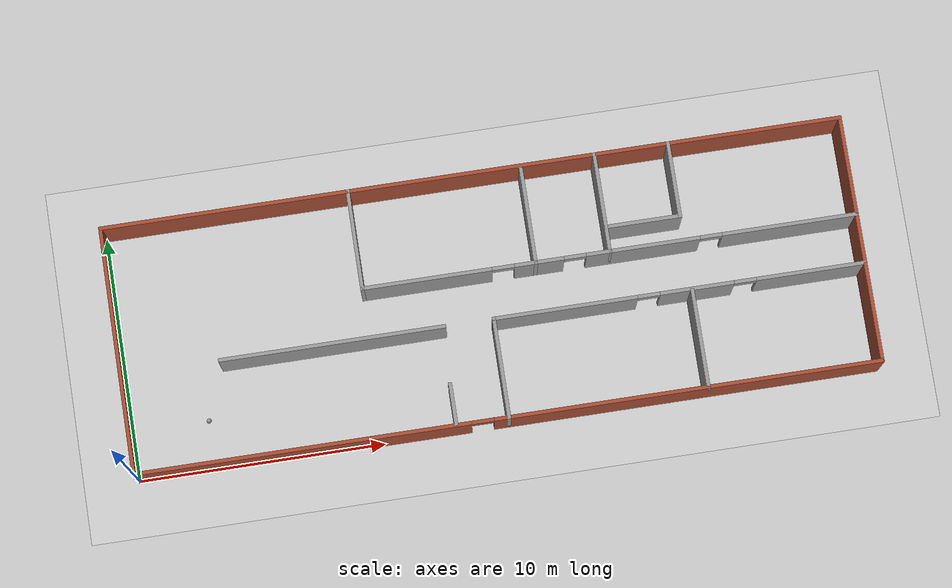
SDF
<sdf version="1.6">
 <world name="default">
  <plugin name="hello" filename="libhello.so"/>
  <light name="sun" type="directional">
   <pose>0 0 10 0 -0 0</pose>
   <diffuse>0.8 0.8 0.8 1</diffuse>
   <specular>0.2 0.2 0.2 1</specular>
   <attenuation>
    <range>1000</range>
    <constant>0.9</constant>
    <linear>0.01</linear>
    <quadratic>0.001</quadratic>
   </attenuation>
   <direction>-0.5 0.1 -0.9</direction>
  </light>
  <model name="ground_plane">
   <static>1</static>
   <link name="link">
    <collision name="collision">
     <geometry><plane><normal>0 0 1</normal><size>100 100</size></plane></geometry>
     <surface>
      <contact><collide_bitmask>65535</collide_bitmask></contact>
      <friction><ode><mu>100</mu><mu2>50</mu2></ode></friction>
     </surface>
    </collision>
    <visual name="visual">
     <cast_shadows>0</cast_shadows>
     <geometry><plane><normal>0 0 1</normal><size>100 100</size></plane></geometry>
     <material>
      <script><uri>file://media/materials/scripts/gazebo.material</uri><name>Gazebo/Grey</name></script>
     </material>
    </visual>
   </link>
  </model>
  <gravity>0 0 -9.8</gravity>
  <magnetic_field>6e-06 2.3e-05 -4.2e-05</magnetic_field>
  <atmosphere type="adiabatic"/>
  <physics name="default_physics" default="0" type="ode">
   <max_step_size>0.001</max_step_size>
   <real_time_factor>1</real_time_factor>
   <real_time_update_rate>1000</real_time_update_rate>
  </physics>
  <scene><ambient>0.4 0.4 0.4 1</ambient><background>0.7 0.7 0.7 1</background><shadows>1</shadows></scene>
  <spherical_coordinates>
   <surface_model>EARTH_WGS84</surface_model>
   <latitude_deg>0</latitude_deg>
   <longitude_deg>0</longitude_deg>
   <elevation>0</elevation>
   <heading_deg>0</heading_deg>
  </spherical_coordinates>
  <model name="building">
   <pose>15 5 0 0 -0 0</pose>
   <link name="Wall_0">
    <collision name="Wall_0_Collision">
     <geometry><box><size>10.15 0.15 2.5</size></box></geometry>
     <pose>0 0 1.25 0 -0 0</pose>
    </collision>
    <visual name="Wall_0_Visual">
     <pose>0 0 1.25 0 -0 0</pose>
     <geometry><box><size>10.15 0.15 2.5</size></box></geometry>
     <material>
      <script><uri>file://media/materials/scripts/gazebo.material</uri><name>Gazebo/Bricks</name></script>
      <ambient>1 1 1 1</ambient>
     </material>
     <meta><layer>0</layer></meta>
    </visual>
    <pose>-15 0 0 0 -0 1.5708</pose>
   </link>
   <link name="Wall_19">
    <pose>5 1 0 0 -0 3.14159</pose>
    <visual name="Wall_19_Visual_0">
     <pose>-7.3118 0 1.25 0 -0 0</pose>
     <geometry><box><size>5.52639 0.15 2.5</size></box></geometry>
     <material>
      <script><uri>file://media/materials/scripts/gazebo.material</uri><name>Gazebo/Grey</name></script>
      <ambient>1 1 1 1</ambient>
     </material>
     <meta><layer>0</layer></meta>
    </visual>
    <collision name="Wall_19_Collision_0">
     <geometry><box><size>5.52639 0.15 2.5</size></box></geometry>
     <pose>-7.3118 0 1.25 0 -0 0</pose>
    </collision>
    <visual name="Wall_19_Visual_1">
     <pose>-1.34507 0 1.25 0 -0 0</pose>
     <geometry><box><size>4.60708 0.15 2.5</size></box></geometry>
     <material>
      <script><uri>file://media/materials/scripts/gazebo.material</uri><name>Gazebo/Grey</name></script>
      <ambient>1 1 1 1</ambient>
     </material>
     <meta><layer>0</layer></meta>
    </visual>
    <collision name="Wall_19_Collision_1">
     <geometry><box><size>4.60708 0.15 2.5</size></box></geometry>
     <pose>-1.34507 0 1.25 0 -0 0</pose>
    </collision>
    <visual name="Wall_19_Visual_2">
     <pose>2.86259 0 1.25 0 -0 0</pose>
     <geometry><box><size>2.00823 0.15 2.5</size></box></geometry>
     <material>
      <script><uri>file://media/materials/scripts/gazebo.material</uri><name>Gazebo/Grey</name></script>
      <ambient>1 1 1 1</ambient>
     </material>
     <meta><layer>0</layer></meta>
    </visual>
    <collision name="Wall_19_Collision_2">
     <geometry><box><size>2.00823 0.15 2.5</size></box></geometry>
     <pose>2.86259 0 1.25 0 -0 0</pose>
    </collision>
    <visual name="Wall_19_Visual_3">
     <pose>7.42085 0 1.25 0 -0 0</pose>
     <geometry><box><size>5.3083 0.15 2.5</size></box></geometry>
     <material>
      <script><uri>file://media/materials/scripts/gazebo.material</uri><name>Gazebo/Grey</name></script>
      <ambient>1 1 1 1</ambient>
     </material>
     <meta><layer>0</layer></meta>
    </visual>
    <collision name="Wall_19_Collision_3">
     <geometry><box><size>5.3083 0.15 2.5</size></box></geometry>
     <pose>7.42085 0 1.25 0 -0 0</pose>
    </collision>
    <visual name="Wall_19_Visual_4">
     <pose>-4.09861 0 2.25 0 -0 0</pose>
     <geometry><box><size>0.9 0.15 0.5</size></box></geometry>
     <material>
      <script><uri>file://media/materials/scripts/gazebo.material</uri><name>Gazebo/Grey</name></script>
      <ambient>1 1 1 1</ambient>
     </material>
     <meta><layer>0</layer></meta>
    </visual>
    <collision name="Wall_19_Collision_4">
     <geometry><box><size>0.9 0.15 0.5</size></box></geometry>
     <pose>-4.09861 0 2.25 0 -0 0</pose>
    </collision>
    <visual name="Wall_19_Visual_5">
     <pose>1.40847 0 2.25 0 -0 0</pose>
     <geometry><box><size>0.9 0.15 0.5</size></box></geometry>
     <material>
      <script><uri>file://media/materials/scripts/gazebo.material</uri><name>Gazebo/Grey</name></script>
      <ambient>1 1 1 1</ambient>
     </material>
     <meta><layer>0</layer></meta>
    </visual>
    <collision name="Wall_19_Collision_5">
     <geometry><box><size>0.9 0.15 0.5</size></box></geometry>
     <pose>1.40847 0 2.25 0 -0 0</pose>
    </collision>
    <visual name="Wall_19_Visual_6">
     <pose>4.3167 0 2.25 0 -0 0</pose>
     <geometry><box><size>0.9 0.15 0.5</size></box></geometry>
     <material>
      <script><uri>file://media/materials/scripts/gazebo.material</uri><name>Gazebo/Grey</name></script>
      <ambient>1 1 1 1</ambient>
     </material>
     <meta><layer>0</layer></meta>
    </visual>
    <collision name="Wall_19_Collision_6">
     <geometry><box><size>0.9 0.15 0.5</size></box></geometry>
     <pose>4.3167 0 2.25 0 -0 0</pose>
    </collision>
   </link>
   <link name="Wall_2">
    <pose>0 -5 0 0 -0 0</pose>
    <visual name="Wall_2_Visual_0">
     <pose>-8.28713 0 1.25 0 -0 0</pose>
     <geometry><box><size>13.5757 0.15 2.5</size></box></geometry>
     <material>
      <script><uri>file://media/materials/scripts/gazebo.material</uri><name>Gazebo/Bricks</name></script>
      <ambient>1 1 1 1</ambient>
     </material>
     <meta><layer>0</layer></meta>
    </visual>
    <collision name="Wall_2_Collision_0">
     <geometry><box><size>13.5757 0.15 2.5</size></box></geometry>
     <pose>-8.28713 0 1.25 0 -0 0</pose>
    </collision>
    <visual name="Wall_2_Visual_1">
     <pose>7.23787 0 1.25 0 -0 0</pose>
     <geometry><box><size>15.6743 0.15 2.5</size></box></geometry>
     <material>
      <script><uri>file://media/materials/scripts/gazebo.material</uri><name>Gazebo/Bricks</name></script>
      <ambient>1 1 1 1</ambient>
     </material>
     <meta><layer>0</layer></meta>
    </visual>
    <collision name="Wall_2_Collision_1">
     <geometry><box><size>15.6743 0.15 2.5</size></box></geometry>
     <pose>7.23787 0 1.25 0 -0 0</pose>
    </collision>
    <visual name="Wall_2_Visual_2">
     <pose>-1.04926 0 2.25 0 -0 0</pose>
     <geometry><box><size>0.9 0.15 0.5</size></box></geometry>
     <material>
      <script><uri>file://media/materials/scripts/gazebo.material</uri><name>Gazebo/Bricks</name></script>
      <ambient>1 1 1 1</ambient>
     </material>
     <meta><layer>0</layer></meta>
    </visual>
    <collision name="Wall_2_Collision_2">
     <geometry><box><size>0.9 0.15 0.5</size></box></geometry>
     <pose>-1.04926 0 2.25 0 -0 0</pose>
    </collision>
   </link>
   <link name="Wall_20">
    <collision name="Wall_20_Collision">
     <geometry><box><size>4.15 0.15 2.5</size></box></geometry>
     <pose>0 0 1.25 0 -0 0</pose>
    </collision>
    <visual name="Wall_20_Visual">
     <pose>0 0 1.25 0 -0 0</pose>
     <geometry><box><size>4.15 0.15 2.5</size></box></geometry>
     <material>
      <script><uri>file://media/materials/scripts/gazebo.material</uri><name>Gazebo/Grey</name></script>
      <ambient>1 1 1 1</ambient>
     </material>
     <meta><layer>0</layer></meta>
    </visual>
    <pose>-5 3 0 0 -0 1.5708</pose>
   </link>
   <link name="Wall_22">
    <pose>7.5 -1 0 0 -0 3.14159</pose>
    <visual name="Wall_22_Visual_0">
     <pose>-5.33776 0 1.25 0 -0 0</pose>
     <geometry><box><size>4.47448 0.15 2.5</size></box></geometry>
     <material>
      <script><uri>file://media/materials/scripts/gazebo.material</uri><name>Gazebo/Grey</name></script>
      <ambient>1 1 1 1</ambient>
     </material>
     <meta><layer>0</layer></meta>
    </visual>
    <collision name="Wall_22_Collision_0">
     <geometry><box><size>4.47448 0.15 2.5</size></box></geometry>
     <pose>-5.33776 0 1.25 0 -0 0</pose>
    </collision>
    <visual name="Wall_22_Visual_1">
     <pose>-0.701386 0 1.25 0 -0 0</pose>
     <geometry><box><size>2.99827 0.15 2.5</size></box></geometry>
     <material>
      <script><uri>file://media/materials/scripts/gazebo.material</uri><name>Gazebo/Grey</name></script>
      <ambient>1 1 1 1</ambient>
     </material>
     <meta><layer>0</layer></meta>
    </visual>
    <collision name="Wall_22_Collision_1">
     <geometry><box><size>2.99827 0.15 2.5</size></box></geometry>
     <pose>-0.701386 0 1.25 0 -0 0</pose>
    </collision>
    <visual name="Wall_22_Visual_2">
     <pose>4.63637 0 1.25 0 -0 0</pose>
     <geometry><box><size>5.87725 0.15 2.5</size></box></geometry>
     <material>
      <script><uri>file://media/materials/scripts/gazebo.material</uri><name>Gazebo/Grey</name></script>
      <ambient>1 1 1 1</ambient>
     </material>
     <meta><layer>0</layer></meta>
    </visual>
    <collision name="Wall_22_Collision_2">
     <geometry><box><size>5.87725 0.15 2.5</size></box></geometry>
     <pose>4.63637 0 1.25 0 -0 0</pose>
    </collision>
    <visual name="Wall_22_Visual_3">
     <pose>-2.65052 0 2.25 0 -0 0</pose>
     <geometry><box><size>0.9 0.15 0.5</size></box></geometry>
     <material>
      <script><uri>file://media/materials/scripts/gazebo.material</uri><name>Gazebo/Grey</name></script>
      <ambient>1 1 1 1</ambient>
     </material>
     <meta><layer>0</layer></meta>
    </visual>
    <collision name="Wall_22_Collision_3">
     <geometry><box><size>0.9 0.15 0.5</size></box></geometry>
     <pose>-2.65052 0 2.25 0 -0 0</pose>
    </collision>
    <visual name="Wall_22_Visual_4">
     <pose>1.24775 0 2.25 0 -0 0</pose>
     <geometry><box><size>0.9 0.15 0.5</size></box></geometry>
     <material>
      <script><uri>file://media/materials/scripts/gazebo.material</uri><name>Gazebo/Grey</name></script>
      <ambient>1 1 1 1</ambient>
     </material>
     <meta><layer>0</layer></meta>
    </visual>
    <collision name="Wall_22_Collision_4">
     <geometry><box><size>0.9 0.15 0.5</size></box></geometry>
     <pose>1.24775 0 2.25 0 -0 0</pose>
    </collision>
   </link>
   <link name="Wall_23">
    <collision name="Wall_23_Collision">
     <geometry><box><size>4.15 0.15 2.5</size></box></geometry>
     <pose>0 0 1.25 0 -0 0</pose>
    </collision>
    <visual name="Wall_23_Visual">
     <pose>0 0 1.25 0 -0 0</pose>
     <geometry><box><size>4.15 0.15 2.5</size></box></geometry>
     <material>
      <script><uri>file://media/materials/scripts/gazebo.material</uri><name>Gazebo/Grey</name></script>
      <ambient>1 1 1 1</ambient>
     </material>
     <meta><layer>0</layer></meta>
    </visual>
    <pose>0 -3 0 0 0 -1.5708</pose>
   </link>
   <link name="Wall_25">
    <collision name="Wall_25_Collision">
     <geometry><box><size>9.15 0.15 2.5</size></box></geometry>
     <pose>0 0 1.25 0 -0 0</pose>
    </collision>
    <visual name="Wall_25_Visual">
     <pose>0 0 1.25 0 -0 0</pose>
     <geometry><box><size>9.15 0.15 2.5</size></box></geometry>
     <material>
      <script><uri>file://media/materials/scripts/gazebo.material</uri><name>Gazebo/Grey</name></script>
      <ambient>1 1 1 1</ambient>
     </material>
     <meta><layer>0</layer></meta>
    </visual>
    <pose>-6.5 -1 0 0 -0 3.14159</pose>
   </link>
   <link name="Wall_27">
    <collision name="Wall_27_Collision">
     <geometry><box><size>1.75 0.15 2.5</size></box></geometry>
     <pose>0 0 1.25 0 -0 0</pose>
    </collision>
    <visual name="Wall_27_Visual">
     <pose>0 0 1.25 0 -0 0</pose>
     <geometry><box><size>1.75 0.15 2.5</size></box></geometry>
     <material>
      <script><uri>file://media/materials/scripts/gazebo.material</uri><name>Gazebo/Grey</name></script>
      <ambient>1 1 1 1</ambient>
     </material>
     <meta><layer>0</layer></meta>
    </visual>
    <pose>-2.11244 -4.14773 0 0 0 -1.5708</pose>
   </link>
   <link name="Wall_29">
    <collision name="Wall_29_Collision">
     <geometry><box><size>4.15 0.15 2.5</size></box></geometry>
     <pose>0 0 1.25 0 -0 0</pose>
    </collision>
    <visual name="Wall_29_Visual">
     <pose>0 0 1.25 0 -0 0</pose>
     <geometry><box><size>4.15 0.15 2.5</size></box></geometry>
     <material>
      <script><uri>file://media/materials/scripts/gazebo.material</uri><name>Gazebo/Grey</name></script>
      <ambient>1 1 1 1</ambient>
     </material>
     <meta><layer>0</layer></meta>
    </visual>
    <pose>2 3 0 0 0 -1.5708</pose>
   </link>
   <link name="Wall_3">
    <collision name="Wall_3_Collision">
     <geometry><box><size>10.15 0.15 2.5</size></box></geometry>
     <pose>0 0 1.25 0 -0 0</pose>
    </collision>
    <visual name="Wall_3_Visual">
     <pose>0 0 1.25 0 -0 0</pose>
     <geometry><box><size>10.15 0.15 2.5</size></box></geometry>
     <material>
      <script><uri>file://media/materials/scripts/gazebo.material</uri><name>Gazebo/Bricks</name></script>
      <ambient>1 1 1 1</ambient>
     </material>
     <meta><layer>0</layer></meta>
    </visual>
    <pose>15 0 0 0 -0 1.5708</pose>
   </link>
   <link name="Wall_31">
    <collision name="Wall_31_Collision">
     <geometry><box><size>4.15 0.15 2.5</size></box></geometry>
     <pose>0 0 1.25 0 -0 0</pose>
    </collision>
    <visual name="Wall_31_Visual">
     <pose>0 0 1.25 0 -0 0</pose>
     <geometry><box><size>4.15 0.15 2.5</size></box></geometry>
     <material>
      <script><uri>file://media/materials/scripts/gazebo.material</uri><name>Gazebo/Grey</name></script>
      <ambient>1 1 1 1</ambient>
     </material>
     <meta><layer>0</layer></meta>
    </visual>
    <pose>5 3 0 0 0 -1.5708</pose>
   </link>
   <link name="Wall_33">
    <collision name="Wall_33_Collision">
     <geometry><box><size>3.15 0.15 2.5</size></box></geometry>
     <pose>0 0 1.25 0 -0 0</pose>
    </collision>
    <visual name="Wall_33_Visual">
     <pose>0 0 1.25 0 -0 0</pose>
     <geometry><box><size>3.15 0.15 2.5</size></box></geometry>
     <material>
      <script><uri>file://media/materials/scripts/gazebo.material</uri><name>Gazebo/Grey</name></script>
      <ambient>1 1 1 1</ambient>
     </material>
     <meta><layer>0</layer></meta>
    </visual>
    <pose>8 3.5 0 0 0 -1.5708</pose>
   </link>
   <link name="Wall_34">
    <collision name="Wall_34_Collision">
     <geometry><box><size>3.15 0.15 2.5</size></box></geometry>
     <pose>0 0 1.25 0 -0 0</pose>
    </collision>
    <visual name="Wall_34_Visual">
     <pose>0 0 1.25 0 -0 0</pose>
     <geometry><box><size>3.15 0.15 2.5</size></box></geometry>
     <material>
      <script><uri>file://media/materials/scripts/gazebo.material</uri><name>Gazebo/Grey</name></script>
      <ambient>1 1 1 1</ambient>
     </material>
     <meta><layer>0</layer></meta>
    </visual>
    <pose>6.5 2 0 0 -0 3.14159</pose>
   </link>
   <link name="Wall_36">
    <collision name="Wall_36_Collision">
     <geometry><box><size>4.15 0.15 2.5</size></box></geometry>
     <pose>0 0 1.25 0 -0 0</pose>
    </collision>
    <visual name="Wall_36_Visual">
     <pose>0 0 1.25 0 -0 0</pose>
     <geometry><box><size>4.15 0.15 2.5</size></box></geometry>
     <material>
      <script><uri>file://media/materials/scripts/gazebo.material</uri><name>Gazebo/Grey</name></script>
      <ambient>1 1 1 1</ambient>
     </material>
     <meta><layer>0</layer></meta>
    </visual>
    <pose>8 -3 0 0 0 -1.5708</pose>
   </link>
   <link name="Wall_5">
    <collision name="Wall_5_Collision">
     <geometry><box><size>30.15 0.15 2.5</size></box></geometry>
     <pose>0 0 1.25 0 -0 0</pose>
    </collision>
    <visual name="Wall_5_Visual">
     <pose>0 0 1.25 0 -0 0</pose>
     <geometry><box><size>30.15 0.15 2.5</size></box></geometry>
     <material>
      <script><uri>file://media/materials/scripts/gazebo.material</uri><name>Gazebo/Bricks</name></script>
      <ambient>1 1 1 1</ambient>
     </material>
     <meta><layer>0</layer></meta>
    </visual>
    <pose>0 5 0 0 -0 0</pose>
   </link>
   <static>1</static>
  </model>
  <model name="my_ball">
   <link name="link_0">
    <inertial>
     <mass>1</mass>
     <inertia><ixx>0.1</ixx><ixy>0</ixy><ixz>0</ixz><iyy>0.1</iyy><iyz>0</iyz><izz>0.1</izz></inertia>
    </inertial>
    <visual name="visual">
     <geometry><sphere><radius>0.1</radius></sphere></geometry>
     <material>
      <lighting>1</lighting>
      <script><uri>file://media/materials/scripts/gazebo.material</uri><name>Gazebo/Grey</name></script>
      <shader type="pixel"><normal_map>__default__</normal_map></shader>
      <ambient>1 1 1 1</ambient>
      <diffuse>1 1 1 1</diffuse>
      <specular>1 1 1 1</specular>
      <emissive>1 1 1 1</emissive>
     </material>
    </visual>
    <collision name="collision">
     <geometry><sphere><radius>0.1</radius></sphere></geometry>
     <surface>
      <friction>
       <ode><mu>1</mu><mu2>1</mu2><fdir1>0 0 0</fdir1><slip1>0</slip1><slip2>0</slip2></ode>
       <torsional>
        <coefficient>1</coefficient>
        <patch_radius>0</patch_radius>
        <surface_radius>0</surface_radius>
        <use_patch_radius>1</use_patch_radius>
        <ode><slip>0</slip></ode>
       </torsional>
      </friction>
      <bounce><restitution_coefficient>0</restitution_coefficient><threshold>1e+06</threshold></bounce>
      <contact>
       <collide_without_contact>0</collide_without_contact>
       <collide_without_contact_bitmask>1</collide_without_contact_bitmask>
       <collide_bitmask>1</collide_bitmask>
       <ode>
        <soft_cfm>0</soft_cfm>
        <soft_erp>0.2</soft_erp>
        <kp>1e+13</kp>
        <kd>1</kd>
        <max_vel>0.01</max_vel>
        <min_depth>0</min_depth>
       </ode>
       <bullet>
        <split_impulse>1</split_impulse>
        <split_impulse_penetration_threshold>-0.01</split_impulse_penetration_threshold>
        <soft_cfm>0</soft_cfm>
        <soft_erp>0.2</soft_erp>
        <kp>1e+13</kp>
        <kd>1</kd>
       </bullet>
      </contact>
     </surface>
    </collision>
   </link>
   <static>0</static>
   <pose>3.08941 1.99714 0.1 0 -0 0</pose>
  </model>
 </world>
</sdf>
